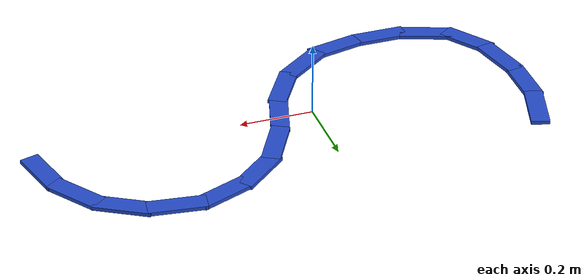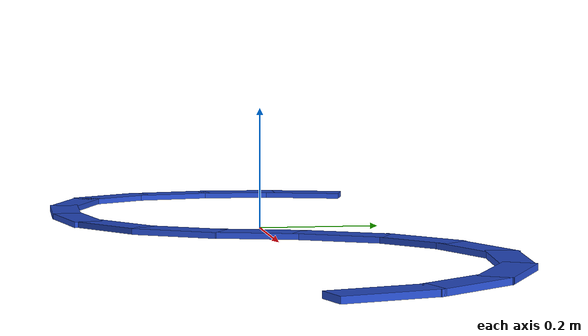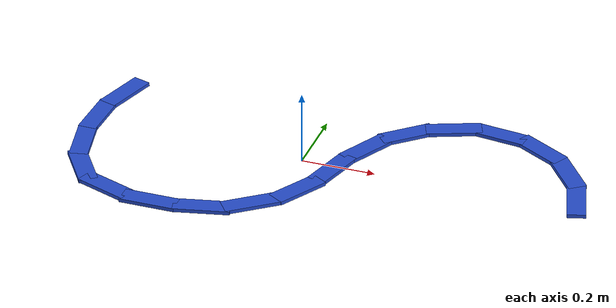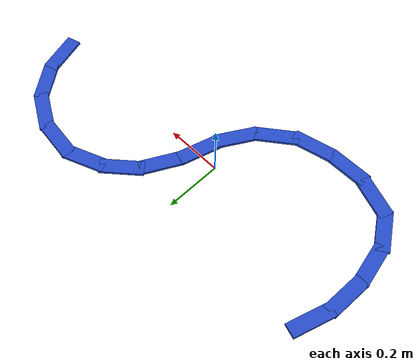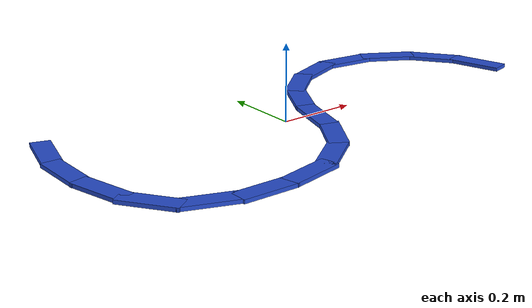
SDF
<?xml version='1.0'?>
<sdf version='1.6'>
  <model name='Blue_spiral_5cm'>
    <link name='link_1'>
      <inertial>
        <mass>1</mass>
        <inertia>
          <ixx>0.166667</ixx>
          <ixy>0</ixy>
          <ixz>0</ixz>
          <iyy>0.166667</iyy>
          <iyz>0</iyz>
          <izz>0.166667</izz>
        </inertia>
        <pose frame=''>0 0 0 0 -0 0</pose>
      </inertial>
      <pose frame=''>-0.307994 -0.311335 -0 0 -0 0</pose>
      <gravity>1</gravity>
      <self_collide>0</self_collide>
      <kinematic>0</kinematic>
      <enable_wind>0</enable_wind>
      <visual name='visual'>
        <pose frame=''>0 0 0 0 -0 0</pose>
        <geometry>
          <box>
            <size>0.15 0.05 0.01</size>
          </box>
        </geometry>
        <material>
          <lighting>1</lighting>
          <script>
            <uri>file://media/materials/scripts/gazebo.material</uri>
            <name>Gazebo/Blue</name>
          </script>
          <ambient>0 0 1 0</ambient>
          <diffuse>0 0 1 0</diffuse>
          <specular>0.01 0.01 0.01 1</specular>
          <emissive>0 0 0 1</emissive>
          <shader type='vertex'>
            <normal_map>__default__</normal_map>
          </shader>
        </material>
        <transparency>0</transparency>
        <cast_shadows>1</cast_shadows>
      </visual>
      <collision name='collision'>
        <laser_retro>0</laser_retro>
        <max_contacts>10</max_contacts>
        <pose frame=''>0 0 0 0 -0 0</pose>
        <geometry>
          <box>
            <size>0.15 0.05 0.01</size>
          </box>
        </geometry>
        <surface>
          <friction>
            <ode>
              <mu>1</mu>
              <mu2>1</mu2>
              <fdir1>0 0 0</fdir1>
              <slip1>0</slip1>
              <slip2>0</slip2>
            </ode>
            <torsional>
              <coefficient>1</coefficient>
              <patch_radius>0</patch_radius>
              <surface_radius>0</surface_radius>
              <use_patch_radius>1</use_patch_radius>
              <ode>
                <slip>0</slip>
              </ode>
            </torsional>
          </friction>
          <bounce>
            <restitution_coefficient>0</restitution_coefficient>
            <threshold>1e+06</threshold>
          </bounce>
          <contact>
            <collide_without_contact>0</collide_without_contact>
            <collide_without_contact_bitmask>1</collide_without_contact_bitmask>
            <collide_bitmask>1</collide_bitmask>
            <ode>
              <soft_cfm>0</soft_cfm>
              <soft_erp>0.2</soft_erp>
              <kp>1e+13</kp>
              <kd>1</kd>
              <max_vel>0.01</max_vel>
              <min_depth>0</min_depth>
            </ode>
            <bullet>
              <split_impulse>1</split_impulse>
              <split_impulse_penetration_threshold>-0.01</split_impulse_penetration_threshold>
              <soft_cfm>0</soft_cfm>
              <soft_erp>0.2</soft_erp>
              <kp>1e+13</kp>
              <kd>1</kd>
            </bullet>
          </contact>
        </surface>
      </collision>
    </link>
    <link name='link_1_clone'>
      <inertial>
        <mass>1</mass>
        <inertia>
          <ixx>0.166667</ixx>
          <ixy>0</ixy>
          <ixz>0</ixz>
          <iyy>0.166667</iyy>
          <iyz>0</iyz>
          <izz>0.166667</izz>
        </inertia>
        <pose frame=''>0 0 0 0 -0 0</pose>
      </inertial>
      <pose frame=''>-0.439651 -0.283908 -0 0 0 -0.349359</pose>
      <gravity>1</gravity>
      <self_collide>0</self_collide>
      <kinematic>0</kinematic>
      <enable_wind>0</enable_wind>
      <visual name='visual'>
        <pose frame=''>0 0 0 0 -0 0</pose>
        <geometry>
          <box>
            <size>0.15 0.05 0.01</size>
          </box>
        </geometry>
        <material>
          <lighting>1</lighting>
          <script>
            <uri>file://media/materials/scripts/gazebo.material</uri>
            <name>Gazebo/Blue</name>
          </script>
          <ambient>0 0 1 0</ambient>
          <diffuse>0 0 1 0</diffuse>
          <specular>0.01 0.01 0.01 1</specular>
          <emissive>0 0 0 1</emissive>
          <shader type='vertex'>
            <normal_map>__default__</normal_map>
          </shader>
        </material>
        <transparency>0</transparency>
        <cast_shadows>1</cast_shadows>
      </visual>
      <collision name='collision'>
        <laser_retro>0</laser_retro>
        <max_contacts>10</max_contacts>
        <pose frame=''>0 0 0 0 -0 0</pose>
        <geometry>
          <box>
            <size>0.15 0.05 0.01</size>
          </box>
        </geometry>
        <surface>
          <friction>
            <ode>
              <mu>1</mu>
              <mu2>1</mu2>
              <fdir1>0 0 0</fdir1>
              <slip1>0</slip1>
              <slip2>0</slip2>
            </ode>
            <torsional>
              <coefficient>1</coefficient>
              <patch_radius>0</patch_radius>
              <surface_radius>0</surface_radius>
              <use_patch_radius>1</use_patch_radius>
              <ode>
                <slip>0</slip>
              </ode>
            </torsional>
          </friction>
          <bounce>
            <restitution_coefficient>0</restitution_coefficient>
            <threshold>1e+06</threshold>
          </bounce>
          <contact>
            <collide_without_contact>0</collide_without_contact>
            <collide_without_contact_bitmask>1</collide_without_contact_bitmask>
            <collide_bitmask>1</collide_bitmask>
            <ode>
              <soft_cfm>0</soft_cfm>
              <soft_erp>0.2</soft_erp>
              <kp>1e+13</kp>
              <kd>1</kd>
              <max_vel>0.01</max_vel>
              <min_depth>0</min_depth>
            </ode>
            <bullet>
              <split_impulse>1</split_impulse>
              <split_impulse_penetration_threshold>-0.01</split_impulse_penetration_threshold>
              <soft_cfm>0</soft_cfm>
              <soft_erp>0.2</soft_erp>
              <kp>1e+13</kp>
              <kd>1</kd>
            </bullet>
          </contact>
        </surface>
      </collision>
    </link>
    <link name='link_1_clone_clone'>
      <inertial>
        <mass>1</mass>
        <inertia>
          <ixx>0.166667</ixx>
          <ixy>0</ixy>
          <ixz>0</ixz>
          <iyy>0.166667</iyy>
          <iyz>0</iyz>
          <izz>0.166667</izz>
        </inertia>
        <pose frame=''>0 0 0 0 -0 0</pose>
      </inertial>
      <pose frame=''>-0.535213 -0.210934 -0 0 0 -0.979377</pose>
      <gravity>1</gravity>
      <self_collide>0</self_collide>
      <kinematic>0</kinematic>
      <enable_wind>0</enable_wind>
      <visual name='visual'>
        <pose frame=''>0 0 0 0 -0 0</pose>
        <geometry>
          <box>
            <size>0.15 0.05 0.01</size>
          </box>
        </geometry>
        <material>
          <lighting>1</lighting>
          <script>
            <uri>file://media/materials/scripts/gazebo.material</uri>
            <name>Gazebo/Blue</name>
          </script>
          <ambient>0 0 1 0</ambient>
          <diffuse>0 0 1 0</diffuse>
          <specular>0.01 0.01 0.01 1</specular>
          <emissive>0 0 0 1</emissive>
          <shader type='vertex'>
            <normal_map>__default__</normal_map>
          </shader>
        </material>
        <transparency>0</transparency>
        <cast_shadows>1</cast_shadows>
      </visual>
      <collision name='collision'>
        <laser_retro>0</laser_retro>
        <max_contacts>10</max_contacts>
        <pose frame=''>0 0 0 0 -0 0</pose>
        <geometry>
          <box>
            <size>0.15 0.05 0.01</size>
          </box>
        </geometry>
        <surface>
          <friction>
            <ode>
              <mu>1</mu>
              <mu2>1</mu2>
              <fdir1>0 0 0</fdir1>
              <slip1>0</slip1>
              <slip2>0</slip2>
            </ode>
            <torsional>
              <coefficient>1</coefficient>
              <patch_radius>0</patch_radius>
              <surface_radius>0</surface_radius>
              <use_patch_radius>1</use_patch_radius>
              <ode>
                <slip>0</slip>
              </ode>
            </torsional>
          </friction>
          <bounce>
            <restitution_coefficient>0</restitution_coefficient>
            <threshold>1e+06</threshold>
          </bounce>
          <contact>
            <collide_without_contact>0</collide_without_contact>
            <collide_without_contact_bitmask>1</collide_without_contact_bitmask>
            <collide_bitmask>1</collide_bitmask>
            <ode>
              <soft_cfm>0</soft_cfm>
              <soft_erp>0.2</soft_erp>
              <kp>1e+13</kp>
              <kd>1</kd>
              <max_vel>0.01</max_vel>
              <min_depth>0</min_depth>
            </ode>
            <bullet>
              <split_impulse>1</split_impulse>
              <split_impulse_penetration_threshold>-0.01</split_impulse_penetration_threshold>
              <soft_cfm>0</soft_cfm>
              <soft_erp>0.2</soft_erp>
              <kp>1e+13</kp>
              <kd>1</kd>
            </bullet>
          </contact>
        </surface>
      </collision>
    </link>
    <link name='link_1_clone_clone_clone'>
      <inertial>
        <mass>1</mass>
        <inertia>
          <ixx>0.166667</ixx>
          <ixy>0</ixy>
          <ixz>0</ixz>
          <iyy>0.166667</iyy>
          <iyz>0</iyz>
          <izz>0.166667</izz>
        </inertia>
        <pose frame=''>0 0 0 0 -0 0</pose>
      </inertial>
      <pose frame=''>-0.58194 -0.091886 -0 0 0 -1.36415</pose>
      <gravity>1</gravity>
      <self_collide>0</self_collide>
      <kinematic>0</kinematic>
      <enable_wind>0</enable_wind>
      <visual name='visual'>
        <pose frame=''>0 0 0 0 -0 0</pose>
        <geometry>
          <box>
            <size>0.15 0.05 0.01</size>
          </box>
        </geometry>
        <material>
          <lighting>1</lighting>
          <script>
            <uri>file://media/materials/scripts/gazebo.material</uri>
            <name>Gazebo/Blue</name>
          </script>
          <ambient>0 0 1 0</ambient>
          <diffuse>0 0 1 0</diffuse>
          <specular>0.01 0.01 0.01 1</specular>
          <emissive>0 0 0 1</emissive>
          <shader type='vertex'>
            <normal_map>__default__</normal_map>
          </shader>
        </material>
        <transparency>0</transparency>
        <cast_shadows>1</cast_shadows>
      </visual>
      <collision name='collision'>
        <laser_retro>0</laser_retro>
        <max_contacts>10</max_contacts>
        <pose frame=''>0 0 0 0 -0 0</pose>
        <geometry>
          <box>
            <size>0.15 0.05 0.01</size>
          </box>
        </geometry>
        <surface>
          <friction>
            <ode>
              <mu>1</mu>
              <mu2>1</mu2>
              <fdir1>0 0 0</fdir1>
              <slip1>0</slip1>
              <slip2>0</slip2>
            </ode>
            <torsional>
              <coefficient>1</coefficient>
              <patch_radius>0</patch_radius>
              <surface_radius>0</surface_radius>
              <use_patch_radius>1</use_patch_radius>
              <ode>
                <slip>0</slip>
              </ode>
            </torsional>
          </friction>
          <bounce>
            <restitution_coefficient>0</restitution_coefficient>
            <threshold>1e+06</threshold>
          </bounce>
          <contact>
            <collide_without_contact>0</collide_without_contact>
            <collide_without_contact_bitmask>1</collide_without_contact_bitmask>
            <collide_bitmask>1</collide_bitmask>
            <ode>
              <soft_cfm>0</soft_cfm>
              <soft_erp>0.2</soft_erp>
              <kp>1e+13</kp>
              <kd>1</kd>
              <max_vel>0.01</max_vel>
              <min_depth>0</min_depth>
            </ode>
            <bullet>
              <split_impulse>1</split_impulse>
              <split_impulse_penetration_threshold>-0.01</split_impulse_penetration_threshold>
              <soft_cfm>0</soft_cfm>
              <soft_erp>0.2</soft_erp>
              <kp>1e+13</kp>
              <kd>1</kd>
            </bullet>
          </contact>
        </surface>
      </collision>
    </link>
    <link name='link_1_clone_clone_clone_clone'>
      <inertial>
        <mass>1</mass>
        <inertia>
          <ixx>0.166667</ixx>
          <ixy>0</ixy>
          <ixz>0</ixz>
          <iyy>0.166667</iyy>
          <iyz>0</iyz>
          <izz>0.166667</izz>
        </inertia>
        <pose frame=''>0 0 0 0 -0 0</pose>
      </inertial>
      <pose frame=''>-0.593495 0.041283 -0 0 0 -1.60451</pose>
      <gravity>1</gravity>
      <self_collide>0</self_collide>
      <kinematic>0</kinematic>
      <enable_wind>0</enable_wind>
      <visual name='visual'>
        <pose frame=''>0 0 0 0 -0 0</pose>
        <geometry>
          <box>
            <size>0.15 0.05 0.01</size>
          </box>
        </geometry>
        <material>
          <lighting>1</lighting>
          <script>
            <uri>file://media/materials/scripts/gazebo.material</uri>
            <name>Gazebo/Blue</name>
          </script>
          <ambient>0 0 1 0</ambient>
          <diffuse>0 0 1 0</diffuse>
          <specular>0.01 0.01 0.01 1</specular>
          <emissive>0 0 0 1</emissive>
          <shader type='vertex'>
            <normal_map>__default__</normal_map>
          </shader>
        </material>
        <transparency>0</transparency>
        <cast_shadows>1</cast_shadows>
      </visual>
      <collision name='collision'>
        <laser_retro>0</laser_retro>
        <max_contacts>10</max_contacts>
        <pose frame=''>0 0 0 0 -0 0</pose>
        <geometry>
          <box>
            <size>0.15 0.05 0.01</size>
          </box>
        </geometry>
        <surface>
          <friction>
            <ode>
              <mu>1</mu>
              <mu2>1</mu2>
              <fdir1>0 0 0</fdir1>
              <slip1>0</slip1>
              <slip2>0</slip2>
            </ode>
            <torsional>
              <coefficient>1</coefficient>
              <patch_radius>0</patch_radius>
              <surface_radius>0</surface_radius>
              <use_patch_radius>1</use_patch_radius>
              <ode>
                <slip>0</slip>
              </ode>
            </torsional>
          </friction>
          <bounce>
            <restitution_coefficient>0</restitution_coefficient>
            <threshold>1e+06</threshold>
          </bounce>
          <contact>
            <collide_without_contact>0</collide_without_contact>
            <collide_without_contact_bitmask>1</collide_without_contact_bitmask>
            <collide_bitmask>1</collide_bitmask>
            <ode>
              <soft_cfm>0</soft_cfm>
              <soft_erp>0.2</soft_erp>
              <kp>1e+13</kp>
              <kd>1</kd>
              <max_vel>0.01</max_vel>
              <min_depth>0</min_depth>
            </ode>
            <bullet>
              <split_impulse>1</split_impulse>
              <split_impulse_penetration_threshold>-0.01</split_impulse_penetration_threshold>
              <soft_cfm>0</soft_cfm>
              <soft_erp>0.2</soft_erp>
              <kp>1e+13</kp>
              <kd>1</kd>
            </bullet>
          </contact>
        </surface>
      </collision>
    </link>
    <link name='link_1_clone_clone_clone_clone_0'>
      <inertial>
        <mass>1</mass>
        <inertia>
          <ixx>0.166667</ixx>
          <ixy>0</ixy>
          <ixz>0</ixz>
          <iyy>0.166667</iyy>
          <iyz>0</iyz>
          <izz>0.166667</izz>
        </inertia>
        <pose frame=''>0 0 0 0 -0 0</pose>
      </inertial>
      <pose frame=''>-0.16943 -0.295469 -0 0 -0 0.222562</pose>
      <gravity>1</gravity>
      <self_collide>0</self_collide>
      <kinematic>0</kinematic>
      <enable_wind>0</enable_wind>
      <visual name='visual'>
        <pose frame=''>0 0 0 0 -0 0</pose>
        <geometry>
          <box>
            <size>0.15 0.05 0.01</size>
          </box>
        </geometry>
        <material>
          <lighting>1</lighting>
          <script>
            <uri>file://media/materials/scripts/gazebo.material</uri>
            <name>Gazebo/Blue</name>
          </script>
          <ambient>0 0 1 0</ambient>
          <diffuse>0 0 1 0</diffuse>
          <specular>0.01 0.01 0.01 1</specular>
          <emissive>0 0 0 1</emissive>
          <shader type='vertex'>
            <normal_map>__default__</normal_map>
          </shader>
        </material>
        <transparency>0</transparency>
        <cast_shadows>1</cast_shadows>
      </visual>
      <collision name='collision'>
        <laser_retro>0</laser_retro>
        <max_contacts>10</max_contacts>
        <pose frame=''>0 0 0 0 -0 0</pose>
        <geometry>
          <box>
            <size>0.15 0.05 0.01</size>
          </box>
        </geometry>
        <surface>
          <friction>
            <ode>
              <mu>1</mu>
              <mu2>1</mu2>
              <fdir1>0 0 0</fdir1>
              <slip1>0</slip1>
              <slip2>0</slip2>
            </ode>
            <torsional>
              <coefficient>1</coefficient>
              <patch_radius>0</patch_radius>
              <surface_radius>0</surface_radius>
              <use_patch_radius>1</use_patch_radius>
              <ode>
                <slip>0</slip>
              </ode>
            </torsional>
          </friction>
          <bounce>
            <restitution_coefficient>0</restitution_coefficient>
            <threshold>1e+06</threshold>
          </bounce>
          <contact>
            <collide_without_contact>0</collide_without_contact>
            <collide_without_contact_bitmask>1</collide_without_contact_bitmask>
            <collide_bitmask>1</collide_bitmask>
            <ode>
              <soft_cfm>0</soft_cfm>
              <soft_erp>0.2</soft_erp>
              <kp>1e+13</kp>
              <kd>1</kd>
              <max_vel>0.01</max_vel>
              <min_depth>0</min_depth>
            </ode>
            <bullet>
              <split_impulse>1</split_impulse>
              <split_impulse_penetration_threshold>-0.01</split_impulse_penetration_threshold>
              <soft_cfm>0</soft_cfm>
              <soft_erp>0.2</soft_erp>
              <kp>1e+13</kp>
              <kd>1</kd>
            </bullet>
          </contact>
        </surface>
      </collision>
    </link>
    <link name='link_1_clone_clone_clone_clone_0_clone_0'>
      <inertial>
        <mass>1</mass>
        <inertia>
          <ixx>0.166667</ixx>
          <ixy>0</ixy>
          <ixz>0</ixz>
          <iyy>0.166667</iyy>
          <iyz>0</iyz>
          <izz>0.166667</izz>
        </inertia>
        <pose frame=''>0 0 0 0 -0 0</pose>
      </inertial>
      <pose frame=''>-0.056822 -0.239175 -0 0 -0 0.648623</pose>
      <gravity>1</gravity>
      <self_collide>0</self_collide>
      <kinematic>0</kinematic>
      <enable_wind>0</enable_wind>
      <visual name='visual'>
        <pose frame=''>0 0 0 0 -0 0</pose>
        <geometry>
          <box>
            <size>0.15 0.05 0.01</size>
          </box>
        </geometry>
        <material>
          <lighting>1</lighting>
          <script>
            <uri>file://media/materials/scripts/gazebo.material</uri>
            <name>Gazebo/Blue</name>
          </script>
          <ambient>0 0 1 0</ambient>
          <diffuse>0 0 1 0</diffuse>
          <specular>0.01 0.01 0.01 1</specular>
          <emissive>0 0 0 1</emissive>
          <shader type='vertex'>
            <normal_map>__default__</normal_map>
          </shader>
        </material>
        <transparency>0</transparency>
        <cast_shadows>1</cast_shadows>
      </visual>
      <collision name='collision'>
        <laser_retro>0</laser_retro>
        <max_contacts>10</max_contacts>
        <pose frame=''>0 0 0 0 -0 0</pose>
        <geometry>
          <box>
            <size>0.15 0.05 0.01</size>
          </box>
        </geometry>
        <surface>
          <friction>
            <ode>
              <mu>1</mu>
              <mu2>1</mu2>
              <fdir1>0 0 0</fdir1>
              <slip1>0</slip1>
              <slip2>0</slip2>
            </ode>
            <torsional>
              <coefficient>1</coefficient>
              <patch_radius>0</patch_radius>
              <surface_radius>0</surface_radius>
              <use_patch_radius>1</use_patch_radius>
              <ode>
                <slip>0</slip>
              </ode>
            </torsional>
          </friction>
          <bounce>
            <restitution_coefficient>0</restitution_coefficient>
            <threshold>1e+06</threshold>
          </bounce>
          <contact>
            <collide_without_contact>0</collide_without_contact>
            <collide_without_contact_bitmask>1</collide_without_contact_bitmask>
            <collide_bitmask>1</collide_bitmask>
            <ode>
              <soft_cfm>0</soft_cfm>
              <soft_erp>0.2</soft_erp>
              <kp>1e+13</kp>
              <kd>1</kd>
              <max_vel>0.01</max_vel>
              <min_depth>0</min_depth>
            </ode>
            <bullet>
              <split_impulse>1</split_impulse>
              <split_impulse_penetration_threshold>-0.01</split_impulse_penetration_threshold>
              <soft_cfm>0</soft_cfm>
              <soft_erp>0.2</soft_erp>
              <kp>1e+13</kp>
              <kd>1</kd>
            </bullet>
          </contact>
        </surface>
      </collision>
    </link>
    <link name='link_1_clone_clone_clone_clone_0_clone_0_clone'>
      <inertial>
        <mass>1</mass>
        <inertia>
          <ixx>0.166667</ixx>
          <ixy>0</ixy>
          <ixz>0</ixz>
          <iyy>0.166667</iyy>
          <iyz>0</iyz>
          <izz>0.166667</izz>
        </inertia>
        <pose frame=''>0 0 0 0 -0 0</pose>
      </inertial>
      <pose frame=''>0.035838 -0.138148 -0 0 -0 1.0318</pose>
      <gravity>1</gravity>
      <self_collide>0</self_collide>
      <kinematic>0</kinematic>
      <enable_wind>0</enable_wind>
      <visual name='visual'>
        <pose frame=''>0 0 0 0 -0 0</pose>
        <geometry>
          <box>
            <size>0.15 0.05 0.01</size>
          </box>
        </geometry>
        <material>
          <lighting>1</lighting>
          <script>
            <uri>file://media/materials/scripts/gazebo.material</uri>
            <name>Gazebo/Blue</name>
          </script>
          <ambient>0 0 1 0</ambient>
          <diffuse>0 0 1 0</diffuse>
          <specular>0.01 0.01 0.01 1</specular>
          <emissive>0 0 0 1</emissive>
          <shader type='vertex'>
            <normal_map>__default__</normal_map>
          </shader>
        </material>
        <transparency>0</transparency>
        <cast_shadows>1</cast_shadows>
      </visual>
      <collision name='collision'>
        <laser_retro>0</laser_retro>
        <max_contacts>10</max_contacts>
        <pose frame=''>0 0 0 0 -0 0</pose>
        <geometry>
          <box>
            <size>0.15 0.05 0.01</size>
          </box>
        </geometry>
        <surface>
          <friction>
            <ode>
              <mu>1</mu>
              <mu2>1</mu2>
              <fdir1>0 0 0</fdir1>
              <slip1>0</slip1>
              <slip2>0</slip2>
            </ode>
            <torsional>
              <coefficient>1</coefficient>
              <patch_radius>0</patch_radius>
              <surface_radius>0</surface_radius>
              <use_patch_radius>1</use_patch_radius>
              <ode>
                <slip>0</slip>
              </ode>
            </torsional>
          </friction>
          <bounce>
            <restitution_coefficient>0</restitution_coefficient>
            <threshold>1e+06</threshold>
          </bounce>
          <contact>
            <collide_without_contact>0</collide_without_contact>
            <collide_without_contact_bitmask>1</collide_without_contact_bitmask>
            <collide_bitmask>1</collide_bitmask>
            <ode>
              <soft_cfm>0</soft_cfm>
              <soft_erp>0.2</soft_erp>
              <kp>1e+13</kp>
              <kd>1</kd>
              <max_vel>0.01</max_vel>
              <min_depth>0</min_depth>
            </ode>
            <bullet>
              <split_impulse>1</split_impulse>
              <split_impulse_penetration_threshold>-0.01</split_impulse_penetration_threshold>
              <soft_cfm>0</soft_cfm>
              <soft_erp>0.2</soft_erp>
              <kp>1e+13</kp>
              <kd>1</kd>
            </bullet>
          </contact>
        </surface>
      </collision>
    </link>
    <link name='link_1_clone_clone_clone_clone_0_clone_0_clone_clone'>
      <inertial>
        <mass>1</mass>
        <inertia>
          <ixx>0.166667</ixx>
          <ixy>0</ixy>
          <ixz>0</ixz>
          <iyy>0.166667</iyy>
          <iyz>0</iyz>
          <izz>0.166667</izz>
        </inertia>
        <pose frame=''>0 0 0 0 -0 0</pose>
      </inertial>
      <pose frame=''>0.087849 -0.012872 -0 0 -0 1.28305</pose>
      <gravity>1</gravity>
      <self_collide>0</self_collide>
      <kinematic>0</kinematic>
      <enable_wind>0</enable_wind>
      <visual name='visual'>
        <pose frame=''>0 0 0 0 -0 0</pose>
        <geometry>
          <box>
            <size>0.15 0.05 0.01</size>
          </box>
        </geometry>
        <material>
          <lighting>1</lighting>
          <script>
            <uri>file://media/materials/scripts/gazebo.material</uri>
            <name>Gazebo/Blue</name>
          </script>
          <ambient>0 0 1 0</ambient>
          <diffuse>0 0 1 0</diffuse>
          <specular>0.01 0.01 0.01 1</specular>
          <emissive>0 0 0 1</emissive>
          <shader type='vertex'>
            <normal_map>__default__</normal_map>
          </shader>
        </material>
        <transparency>0</transparency>
        <cast_shadows>1</cast_shadows>
      </visual>
      <collision name='collision'>
        <laser_retro>0</laser_retro>
        <max_contacts>10</max_contacts>
        <pose frame=''>0 0 0 0 -0 0</pose>
        <geometry>
          <box>
            <size>0.15 0.05 0.01</size>
          </box>
        </geometry>
        <surface>
          <friction>
            <ode>
              <mu>1</mu>
              <mu2>1</mu2>
              <fdir1>0 0 0</fdir1>
              <slip1>0</slip1>
              <slip2>0</slip2>
            </ode>
            <torsional>
              <coefficient>1</coefficient>
              <patch_radius>0</patch_radius>
              <surface_radius>0</surface_radius>
              <use_patch_radius>1</use_patch_radius>
              <ode>
                <slip>0</slip>
              </ode>
            </torsional>
          </friction>
          <bounce>
            <restitution_coefficient>0</restitution_coefficient>
            <threshold>1e+06</threshold>
          </bounce>
          <contact>
            <collide_without_contact>0</collide_without_contact>
            <collide_without_contact_bitmask>1</collide_without_contact_bitmask>
            <collide_bitmask>1</collide_bitmask>
            <ode>
              <soft_cfm>0</soft_cfm>
              <soft_erp>0.2</soft_erp>
              <kp>1e+13</kp>
              <kd>1</kd>
              <max_vel>0.01</max_vel>
              <min_depth>0</min_depth>
            </ode>
            <bullet>
              <split_impulse>1</split_impulse>
              <split_impulse_penetration_threshold>-0.01</split_impulse_penetration_threshold>
              <soft_cfm>0</soft_cfm>
              <soft_erp>0.2</soft_erp>
              <kp>1e+13</kp>
              <kd>1</kd>
            </bullet>
          </contact>
        </surface>
      </collision>
    </link>
    <link name='link_1_clone_clone_clone_clone_0_clone_0_clone_clone_clone'>
      <inertial>
        <mass>1</mass>
        <inertia>
          <ixx>0.166667</ixx>
          <ixy>0</ixy>
          <ixz>0</ixz>
          <iyy>0.166667</iyy>
          <iyz>0</iyz>
          <izz>0.166667</izz>
        </inertia>
        <pose frame=''>0 0 0 0 -0 0</pose>
      </inertial>
      <pose frame=''>0.139436 0.112201 -0 0 -0 1.07546</pose>
      <gravity>1</gravity>
      <self_collide>0</self_collide>
      <kinematic>0</kinematic>
      <enable_wind>0</enable_wind>
      <visual name='visual'>
        <pose frame=''>0 0 0 0 -0 0</pose>
        <geometry>
          <box>
            <size>0.15 0.05 0.01</size>
          </box>
        </geometry>
        <material>
          <lighting>1</lighting>
          <script>
            <uri>file://media/materials/scripts/gazebo.material</uri>
            <name>Gazebo/Blue</name>
          </script>
          <ambient>0 0 1 0</ambient>
          <diffuse>0 0 1 0</diffuse>
          <specular>0.01 0.01 0.01 1</specular>
          <emissive>0 0 0 1</emissive>
          <shader type='vertex'>
            <normal_map>__default__</normal_map>
          </shader>
        </material>
        <transparency>0</transparency>
        <cast_shadows>1</cast_shadows>
      </visual>
      <collision name='collision'>
        <laser_retro>0</laser_retro>
        <max_contacts>10</max_contacts>
        <pose frame=''>0 0 0 0 -0 0</pose>
        <geometry>
          <box>
            <size>0.15 0.05 0.01</size>
          </box>
        </geometry>
        <surface>
          <friction>
            <ode>
              <mu>1</mu>
              <mu2>1</mu2>
              <fdir1>0 0 0</fdir1>
              <slip1>0</slip1>
              <slip2>0</slip2>
            </ode>
            <torsional>
              <coefficient>1</coefficient>
              <patch_radius>0</patch_radius>
              <surface_radius>0</surface_radius>
              <use_patch_radius>1</use_patch_radius>
              <ode>
                <slip>0</slip>
              </ode>
            </torsional>
          </friction>
          <bounce>
            <restitution_coefficient>0</restitution_coefficient>
            <threshold>1e+06</threshold>
          </bounce>
          <contact>
            <collide_without_contact>0</collide_without_contact>
            <collide_without_contact_bitmask>1</collide_without_contact_bitmask>
            <collide_bitmask>1</collide_bitmask>
            <ode>
              <soft_cfm>0</soft_cfm>
              <soft_erp>0.2</soft_erp>
              <kp>1e+13</kp>
              <kd>1</kd>
              <max_vel>0.01</max_vel>
              <min_depth>0</min_depth>
            </ode>
            <bullet>
              <split_impulse>1</split_impulse>
              <split_impulse_penetration_threshold>-0.01</split_impulse_penetration_threshold>
              <soft_cfm>0</soft_cfm>
              <soft_erp>0.2</soft_erp>
              <kp>1e+13</kp>
              <kd>1</kd>
            </bullet>
          </contact>
        </surface>
      </collision>
    </link>
    <link name='link_1_clone_clone_clone_clone_0_clone_0_clone_clone_clone_clone'>
      <inertial>
        <mass>1</mass>
        <inertia>
          <ixx>0.166667</ixx>
          <ixy>0</ixy>
          <ixz>0</ixz>
          <iyy>0.166667</iyy>
          <iyz>0</iyz>
          <izz>0.166667</izz>
        </inertia>
        <pose frame=''>0 0 0 0 -0 0</pose>
      </inertial>
      <pose frame=''>0.218537 0.215411 -0 0 -0 0.716002</pose>
      <gravity>1</gravity>
      <self_collide>0</self_collide>
      <kinematic>0</kinematic>
      <enable_wind>0</enable_wind>
      <visual name='visual'>
        <pose frame=''>0 0 0 0 -0 0</pose>
        <geometry>
          <box>
            <size>0.15 0.05 0.01</size>
          </box>
        </geometry>
        <material>
          <lighting>1</lighting>
          <script>
            <uri>file://media/materials/scripts/gazebo.material</uri>
            <name>Gazebo/Blue</name>
          </script>
          <ambient>0 0 1 0</ambient>
          <diffuse>0 0 1 0</diffuse>
          <specular>0.01 0.01 0.01 1</specular>
          <emissive>0 0 0 1</emissive>
          <shader type='vertex'>
            <normal_map>__default__</normal_map>
          </shader>
        </material>
        <transparency>0</transparency>
        <cast_shadows>1</cast_shadows>
      </visual>
      <collision name='collision'>
        <laser_retro>0</laser_retro>
        <max_contacts>10</max_contacts>
        <pose frame=''>0 0 0 0 -0 0</pose>
        <geometry>
          <box>
            <size>0.15 0.05 0.01</size>
          </box>
        </geometry>
        <surface>
          <friction>
            <ode>
              <mu>1</mu>
              <mu2>1</mu2>
              <fdir1>0 0 0</fdir1>
              <slip1>0</slip1>
              <slip2>0</slip2>
            </ode>
            <torsional>
              <coefficient>1</coefficient>
              <patch_radius>0</patch_radius>
              <surface_radius>0</surface_radius>
              <use_patch_radius>1</use_patch_radius>
              <ode>
                <slip>0</slip>
              </ode>
            </torsional>
          </friction>
          <bounce>
            <restitution_coefficient>0</restitution_coefficient>
            <threshold>1e+06</threshold>
          </bounce>
          <contact>
            <collide_without_contact>0</collide_without_contact>
            <collide_without_contact_bitmask>1</collide_without_contact_bitmask>
            <collide_bitmask>1</collide_bitmask>
            <ode>
              <soft_cfm>0</soft_cfm>
              <soft_erp>0.2</soft_erp>
              <kp>1e+13</kp>
              <kd>1</kd>
              <max_vel>0.01</max_vel>
              <min_depth>0</min_depth>
            </ode>
            <bullet>
              <split_impulse>1</split_impulse>
              <split_impulse_penetration_threshold>-0.01</split_impulse_penetration_threshold>
              <soft_cfm>0</soft_cfm>
              <soft_erp>0.2</soft_erp>
              <kp>1e+13</kp>
              <kd>1</kd>
            </bullet>
          </contact>
        </surface>
      </collision>
    </link>
    <link name='link_1_clone_clone_clone_clone_0_clone_0_clone_clone_clone_clone_clone'>
      <inertial>
        <mass>1</mass>
        <inertia>
          <ixx>0.166667</ixx>
          <ixy>0</ixy>
          <ixz>0</ixz>
          <iyy>0.166667</iyy>
          <iyz>0</iyz>
          <izz>0.166667</izz>
        </inertia>
        <pose frame=''>0 0 0 0 -0 0</pose>
      </inertial>
      <pose frame=''>0.32946 0.279772 -0 0 -0 0.372804</pose>
      <gravity>1</gravity>
      <self_collide>0</self_collide>
      <kinematic>0</kinematic>
      <enable_wind>0</enable_wind>
      <visual name='visual'>
        <pose frame=''>0 0 0 0 -0 0</pose>
        <geometry>
          <box>
            <size>0.15 0.05 0.01</size>
          </box>
        </geometry>
        <material>
          <lighting>1</lighting>
          <script>
            <uri>file://media/materials/scripts/gazebo.material</uri>
            <name>Gazebo/Blue</name>
          </script>
          <ambient>0 0 1 0</ambient>
          <diffuse>0 0 1 0</diffuse>
          <specular>0.01 0.01 0.01 1</specular>
          <emissive>0 0 0 1</emissive>
          <shader type='vertex'>
            <normal_map>__default__</normal_map>
          </shader>
        </material>
        <transparency>0</transparency>
        <cast_shadows>1</cast_shadows>
      </visual>
      <collision name='collision'>
        <laser_retro>0</laser_retro>
        <max_contacts>10</max_contacts>
        <pose frame=''>0 0 0 0 -0 0</pose>
        <geometry>
          <box>
            <size>0.15 0.05 0.01</size>
          </box>
        </geometry>
        <surface>
          <friction>
            <ode>
              <mu>1</mu>
              <mu2>1</mu2>
              <fdir1>0 0 0</fdir1>
              <slip1>0</slip1>
              <slip2>0</slip2>
            </ode>
            <torsional>
              <coefficient>1</coefficient>
              <patch_radius>0</patch_radius>
              <surface_radius>0</surface_radius>
              <use_patch_radius>1</use_patch_radius>
              <ode>
                <slip>0</slip>
              </ode>
            </torsional>
          </friction>
          <bounce>
            <restitution_coefficient>0</restitution_coefficient>
            <threshold>1e+06</threshold>
          </bounce>
          <contact>
            <collide_without_contact>0</collide_without_contact>
            <collide_without_contact_bitmask>1</collide_without_contact_bitmask>
            <collide_bitmask>1</collide_bitmask>
            <ode>
              <soft_cfm>0</soft_cfm>
              <soft_erp>0.2</soft_erp>
              <kp>1e+13</kp>
              <kd>1</kd>
              <max_vel>0.01</max_vel>
              <min_depth>0</min_depth>
            </ode>
            <bullet>
              <split_impulse>1</split_impulse>
              <split_impulse_penetration_threshold>-0.01</split_impulse_penetration_threshold>
              <soft_cfm>0</soft_cfm>
              <soft_erp>0.2</soft_erp>
              <kp>1e+13</kp>
              <kd>1</kd>
            </bullet>
          </contact>
        </surface>
      </collision>
    </link>
    <link name='link_1_clone_clone_clone_clone_0_clone_0_clone_clone_clone_clone_clone_clone'>
      <inertial>
        <mass>1</mass>
        <inertia>
          <ixx>0.166667</ixx>
          <ixy>0</ixy>
          <ixz>0</ixz>
          <iyy>0.166667</iyy>
          <iyz>0</iyz>
          <izz>0.166667</izz>
        </inertia>
        <pose frame=''>0 0 0 0 -0 0</pose>
      </inertial>
      <pose frame=''>0.453979 0.29429 -0 0 0 -0.129614</pose>
      <gravity>1</gravity>
      <self_collide>0</self_collide>
      <kinematic>0</kinematic>
      <enable_wind>0</enable_wind>
      <visual name='visual'>
        <pose frame=''>0 0 0 0 -0 0</pose>
        <geometry>
          <box>
            <size>0.15 0.05 0.01</size>
          </box>
        </geometry>
        <material>
          <lighting>1</lighting>
          <script>
            <uri>file://media/materials/scripts/gazebo.material</uri>
            <name>Gazebo/Blue</name>
          </script>
          <ambient>0 0 1 0</ambient>
          <diffuse>0 0 1 0</diffuse>
          <specular>0.01 0.01 0.01 1</specular>
          <emissive>0 0 0 1</emissive>
          <shader type='vertex'>
            <normal_map>__default__</normal_map>
          </shader>
        </material>
        <transparency>0</transparency>
        <cast_shadows>1</cast_shadows>
      </visual>
      <collision name='collision'>
        <laser_retro>0</laser_retro>
        <max_contacts>10</max_contacts>
        <pose frame=''>0 0 0 0 -0 0</pose>
        <geometry>
          <box>
            <size>0.15 0.05 0.01</size>
          </box>
        </geometry>
        <surface>
          <friction>
            <ode>
              <mu>1</mu>
              <mu2>1</mu2>
              <fdir1>0 0 0</fdir1>
              <slip1>0</slip1>
              <slip2>0</slip2>
            </ode>
            <torsional>
              <coefficient>1</coefficient>
              <patch_radius>0</patch_radius>
              <surface_radius>0</surface_radius>
              <use_patch_radius>1</use_patch_radius>
              <ode>
                <slip>0</slip>
              </ode>
            </torsional>
          </friction>
          <bounce>
            <restitution_coefficient>0</restitution_coefficient>
            <threshold>1e+06</threshold>
          </bounce>
          <contact>
            <collide_without_contact>0</collide_without_contact>
            <collide_without_contact_bitmask>1</collide_without_contact_bitmask>
            <collide_bitmask>1</collide_bitmask>
            <ode>
              <soft_cfm>0</soft_cfm>
              <soft_erp>0.2</soft_erp>
              <kp>1e+13</kp>
              <kd>1</kd>
              <max_vel>0.01</max_vel>
              <min_depth>0</min_depth>
            </ode>
            <bullet>
              <split_impulse>1</split_impulse>
              <split_impulse_penetration_threshold>-0.01</split_impulse_penetration_threshold>
              <soft_cfm>0</soft_cfm>
              <soft_erp>0.2</soft_erp>
              <kp>1e+13</kp>
              <kd>1</kd>
            </bullet>
          </contact>
        </surface>
      </collision>
    </link>
    <link name='link_1_clone_clone_clone_clone_0_clone_0_clone_clone_clone_clone_clone_clone_clone'>
      <inertial>
        <mass>1</mass>
        <inertia>
          <ixx>0.166667</ixx>
          <ixy>0</ixy>
          <ixz>0</ixz>
          <iyy>0.166667</iyy>
          <iyz>0</iyz>
          <izz>0.166667</izz>
        </inertia>
        <pose frame=''>0 0 0 0 -0 0</pose>
      </inertial>
      <pose frame=''>0.57844 0.254661 -0 0 0 -0.523174</pose>
      <gravity>1</gravity>
      <self_collide>0</self_collide>
      <kinematic>0</kinematic>
      <enable_wind>0</enable_wind>
      <visual name='visual'>
        <pose frame=''>0 0 0 0 -0 0</pose>
        <geometry>
          <box>
            <size>0.15 0.05 0.01</size>
          </box>
        </geometry>
        <material>
          <lighting>1</lighting>
          <script>
            <uri>file://media/materials/scripts/gazebo.material</uri>
            <name>Gazebo/Blue</name>
          </script>
          <ambient>0 0 1 0</ambient>
          <diffuse>0 0 1 0</diffuse>
          <specular>0.01 0.01 0.01 1</specular>
          <emissive>0 0 0 1</emissive>
          <shader type='vertex'>
            <normal_map>__default__</normal_map>
          </shader>
        </material>
        <transparency>0</transparency>
        <cast_shadows>1</cast_shadows>
      </visual>
      <collision name='collision'>
        <laser_retro>0</laser_retro>
        <max_contacts>10</max_contacts>
        <pose frame=''>0 0 0 0 -0 0</pose>
        <geometry>
          <box>
            <size>0.15 0.05 0.01</size>
          </box>
        </geometry>
        <surface>
          <friction>
            <ode>
              <mu>1</mu>
              <mu2>1</mu2>
              <fdir1>0 0 0</fdir1>
              <slip1>0</slip1>
              <slip2>0</slip2>
            </ode>
            <torsional>
              <coefficient>1</coefficient>
              <patch_radius>0</patch_radius>
              <surface_radius>0</surface_radius>
              <use_patch_radius>1</use_patch_radius>
              <ode>
                <slip>0</slip>
              </ode>
            </torsional>
          </friction>
          <bounce>
            <restitution_coefficient>0</restitution_coefficient>
            <threshold>1e+06</threshold>
          </bounce>
          <contact>
            <collide_without_contact>0</collide_without_contact>
            <collide_without_contact_bitmask>1</collide_without_contact_bitmask>
            <collide_bitmask>1</collide_bitmask>
            <ode>
              <soft_cfm>0</soft_cfm>
              <soft_erp>0.2</soft_erp>
              <kp>1e+13</kp>
              <kd>1</kd>
              <max_vel>0.01</max_vel>
              <min_depth>0</min_depth>
            </ode>
            <bullet>
              <split_impulse>1</split_impulse>
              <split_impulse_penetration_threshold>-0.01</split_impulse_penetration_threshold>
              <soft_cfm>0</soft_cfm>
              <soft_erp>0.2</soft_erp>
              <kp>1e+13</kp>
              <kd>1</kd>
            </bullet>
          </contact>
        </surface>
      </collision>
    </link>
    <link name='link_1_clone_clone_clone_clone_0_clone_0_clone_clone_clone_clone_clone_clone_clone_clone'>
      <inertial>
        <mass>1</mass>
        <inertia>
          <ixx>0.166667</ixx>
          <ixy>0</ixy>
          <ixz>0</ixz>
          <iyy>0.166667</iyy>
          <iyz>0</iyz>
          <izz>0.166667</izz>
        </inertia>
        <pose frame=''>0 0 0 0 -0 0</pose>
      </inertial>
      <pose frame=''>0.676844 0.165702 -0 0 0 -0.939204</pose>
      <gravity>1</gravity>
      <self_collide>0</self_collide>
      <kinematic>0</kinematic>
      <enable_wind>0</enable_wind>
      <visual name='visual'>
        <pose frame=''>0 0 0 0 -0 0</pose>
        <geometry>
          <box>
            <size>0.15 0.05 0.01</size>
          </box>
        </geometry>
        <material>
          <lighting>1</lighting>
          <script>
            <uri>file://media/materials/scripts/gazebo.material</uri>
            <name>Gazebo/Blue</name>
          </script>
          <ambient>0 0 1 0</ambient>
          <diffuse>0 0 1 0</diffuse>
          <specular>0.01 0.01 0.01 1</specular>
          <emissive>0 0 0 1</emissive>
          <shader type='vertex'>
            <normal_map>__default__</normal_map>
          </shader>
        </material>
        <transparency>0</transparency>
        <cast_shadows>1</cast_shadows>
      </visual>
      <collision name='collision'>
        <laser_retro>0</laser_retro>
        <max_contacts>10</max_contacts>
        <pose frame=''>0 0 0 0 -0 0</pose>
        <geometry>
          <box>
            <size>0.15 0.05 0.01</size>
          </box>
        </geometry>
        <surface>
          <friction>
            <ode>
              <mu>1</mu>
              <mu2>1</mu2>
              <fdir1>0 0 0</fdir1>
              <slip1>0</slip1>
              <slip2>0</slip2>
            </ode>
            <torsional>
              <coefficient>1</coefficient>
              <patch_radius>0</patch_radius>
              <surface_radius>0</surface_radius>
              <use_patch_radius>1</use_patch_radius>
              <ode>
                <slip>0</slip>
              </ode>
            </torsional>
          </friction>
          <bounce>
            <restitution_coefficient>0</restitution_coefficient>
            <threshold>1e+06</threshold>
          </bounce>
          <contact>
            <collide_without_contact>0</collide_without_contact>
            <collide_without_contact_bitmask>1</collide_without_contact_bitmask>
            <collide_bitmask>1</collide_bitmask>
            <ode>
              <soft_cfm>0</soft_cfm>
              <soft_erp>0.2</soft_erp>
              <kp>1e+13</kp>
              <kd>1</kd>
              <max_vel>0.01</max_vel>
              <min_depth>0</min_depth>
            </ode>
            <bullet>
              <split_impulse>1</split_impulse>
              <split_impulse_penetration_threshold>-0.01</split_impulse_penetration_threshold>
              <soft_cfm>0</soft_cfm>
              <soft_erp>0.2</soft_erp>
              <kp>1e+13</kp>
              <kd>1</kd>
            </bullet>
          </contact>
        </surface>
      </collision>
    </link>
    <link name='link_1_clone_clone_clone_clone_0_clone_0_clone_clone_clone_clone_clone_clone_clone_clone_clone'>
      <inertial>
        <mass>1</mass>
        <inertia>
          <ixx>0.166667</ixx>
          <ixy>0</ixy>
          <ixz>0</ixz>
          <iyy>0.166667</iyy>
          <iyz>0</iyz>
          <izz>0.166667</izz>
        </inertia>
        <pose frame=''>0 0 0 0 -0 0</pose>
      </inertial>
      <pose frame=''>0.733853 0.047732 -0 0 0 -1.29469</pose>
      <gravity>1</gravity>
      <self_collide>0</self_collide>
      <kinematic>0</kinematic>
      <enable_wind>0</enable_wind>
      <visual name='visual'>
        <pose frame=''>0 0 0 0 -0 0</pose>
        <geometry>
          <box>
            <size>0.15 0.05 0.01</size>
          </box>
        </geometry>
        <material>
          <lighting>1</lighting>
          <script>
            <uri>file://media/materials/scripts/gazebo.material</uri>
            <name>Gazebo/Blue</name>
          </script>
          <ambient>0 0 1 0</ambient>
          <diffuse>0 0 1 0</diffuse>
          <specular>0.01 0.01 0.01 1</specular>
          <emissive>0 0 0 1</emissive>
          <shader type='vertex'>
            <normal_map>__default__</normal_map>
          </shader>
        </material>
        <transparency>0</transparency>
        <cast_shadows>1</cast_shadows>
      </visual>
      <collision name='collision'>
        <laser_retro>0</laser_retro>
        <max_contacts>10</max_contacts>
        <pose frame=''>0 0 0 0 -0 0</pose>
        <geometry>
          <box>
            <size>0.15 0.05 0.01</size>
          </box>
        </geometry>
        <surface>
          <friction>
            <ode>
              <mu>1</mu>
              <mu2>1</mu2>
              <fdir1>0 0 0</fdir1>
              <slip1>0</slip1>
              <slip2>0</slip2>
            </ode>
            <torsional>
              <coefficient>1</coefficient>
              <patch_radius>0</patch_radius>
              <surface_radius>0</surface_radius>
              <use_patch_radius>1</use_patch_radius>
              <ode>
                <slip>0</slip>
              </ode>
            </torsional>
          </friction>
          <bounce>
            <restitution_coefficient>0</restitution_coefficient>
            <threshold>1e+06</threshold>
          </bounce>
          <contact>
            <collide_without_contact>0</collide_without_contact>
            <collide_without_contact_bitmask>1</collide_without_contact_bitmask>
            <collide_bitmask>1</collide_bitmask>
            <ode>
              <soft_cfm>0</soft_cfm>
              <soft_erp>0.2</soft_erp>
              <kp>1e+13</kp>
              <kd>1</kd>
              <max_vel>0.01</max_vel>
              <min_depth>0</min_depth>
            </ode>
            <bullet>
              <split_impulse>1</split_impulse>
              <split_impulse_penetration_threshold>-0.01</split_impulse_penetration_threshold>
              <soft_cfm>0</soft_cfm>
              <soft_erp>0.2</soft_erp>
              <kp>1e+13</kp>
              <kd>1</kd>
            </bullet>
          </contact>
        </surface>
      </collision>
    </link>
    <link name='link_1_clone_clone_clone_clone_clone'>
      <inertial>
        <mass>1</mass>
        <inertia>
          <ixx>0.166667</ixx>
          <ixy>0</ixy>
          <ixz>0</ixz>
          <iyy>0.166667</iyy>
          <iyz>0</iyz>
          <izz>0.166667</izz>
        </inertia>
        <pose frame=''>0 0 0 0 -0 0</pose>
      </inertial>
      <pose frame=''>-0.569689 0.172678 -0 0 0 -1.87397</pose>
      <gravity>1</gravity>
      <self_collide>0</self_collide>
      <kinematic>0</kinematic>
      <enable_wind>0</enable_wind>
      <visual name='visual'>
        <pose frame=''>0 0 0 0 -0 0</pose>
        <geometry>
          <box>
            <size>0.15 0.05 0.01</size>
          </box>
        </geometry>
        <material>
          <lighting>1</lighting>
          <script>
            <uri>file://media/materials/scripts/gazebo.material</uri>
            <name>Gazebo/Blue</name>
          </script>
          <ambient>0 0 1 0</ambient>
          <diffuse>0 0 1 0</diffuse>
          <specular>0.01 0.01 0.01 1</specular>
          <emissive>0 0 0 1</emissive>
          <shader type='vertex'>
            <normal_map>__default__</normal_map>
          </shader>
        </material>
        <transparency>0</transparency>
        <cast_shadows>1</cast_shadows>
      </visual>
      <collision name='collision'>
        <laser_retro>0</laser_retro>
        <max_contacts>10</max_contacts>
        <pose frame=''>0 0 0 0 -0 0</pose>
        <geometry>
          <box>
            <size>0.15 0.05 0.01</size>
          </box>
        </geometry>
        <surface>
          <friction>
            <ode>
              <mu>1</mu>
              <mu2>1</mu2>
              <fdir1>0 0 0</fdir1>
              <slip1>0</slip1>
              <slip2>0</slip2>
            </ode>
            <torsional>
              <coefficient>1</coefficient>
              <patch_radius>0</patch_radius>
              <surface_radius>0</surface_radius>
              <use_patch_radius>1</use_patch_radius>
              <ode>
                <slip>0</slip>
              </ode>
            </torsional>
          </friction>
          <bounce>
            <restitution_coefficient>0</restitution_coefficient>
            <threshold>1e+06</threshold>
          </bounce>
          <contact>
            <collide_without_contact>0</collide_without_contact>
            <collide_without_contact_bitmask>1</collide_without_contact_bitmask>
            <collide_bitmask>1</collide_bitmask>
            <ode>
              <soft_cfm>0</soft_cfm>
              <soft_erp>0.2</soft_erp>
              <kp>1e+13</kp>
              <kd>1</kd>
              <max_vel>0.01</max_vel>
              <min_depth>0</min_depth>
            </ode>
            <bullet>
              <split_impulse>1</split_impulse>
              <split_impulse_penetration_threshold>-0.01</split_impulse_penetration_threshold>
              <soft_cfm>0</soft_cfm>
              <soft_erp>0.2</soft_erp>
              <kp>1e+13</kp>
              <kd>1</kd>
            </bullet>
          </contact>
        </surface>
      </collision>
    </link>
    <static>1</static>
    <allow_auto_disable>0</allow_auto_disable>
  </model>
</sdf>
